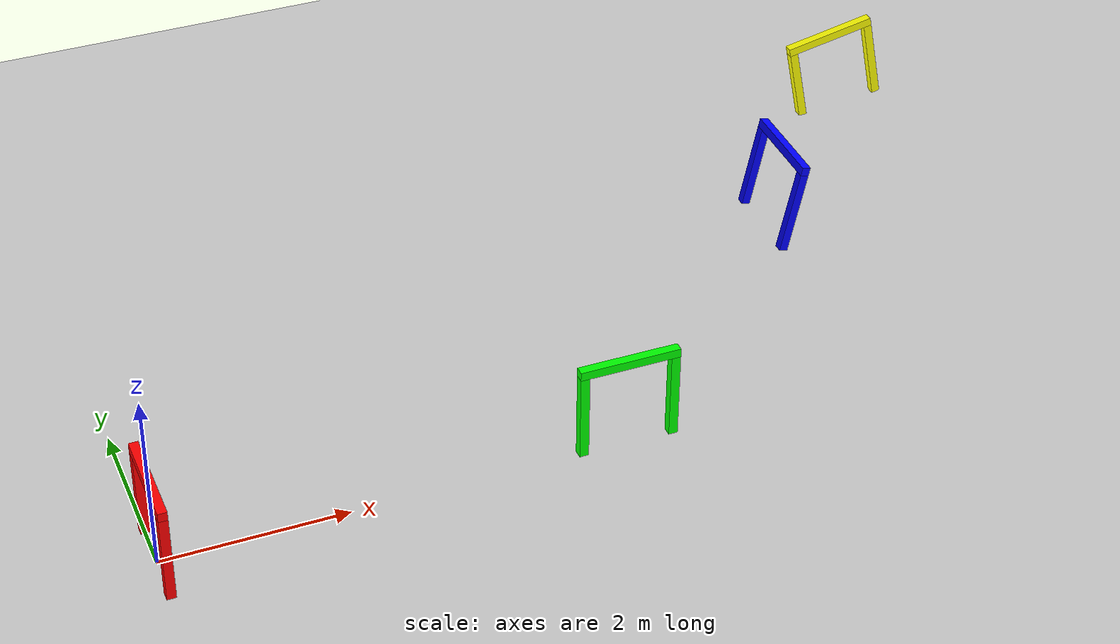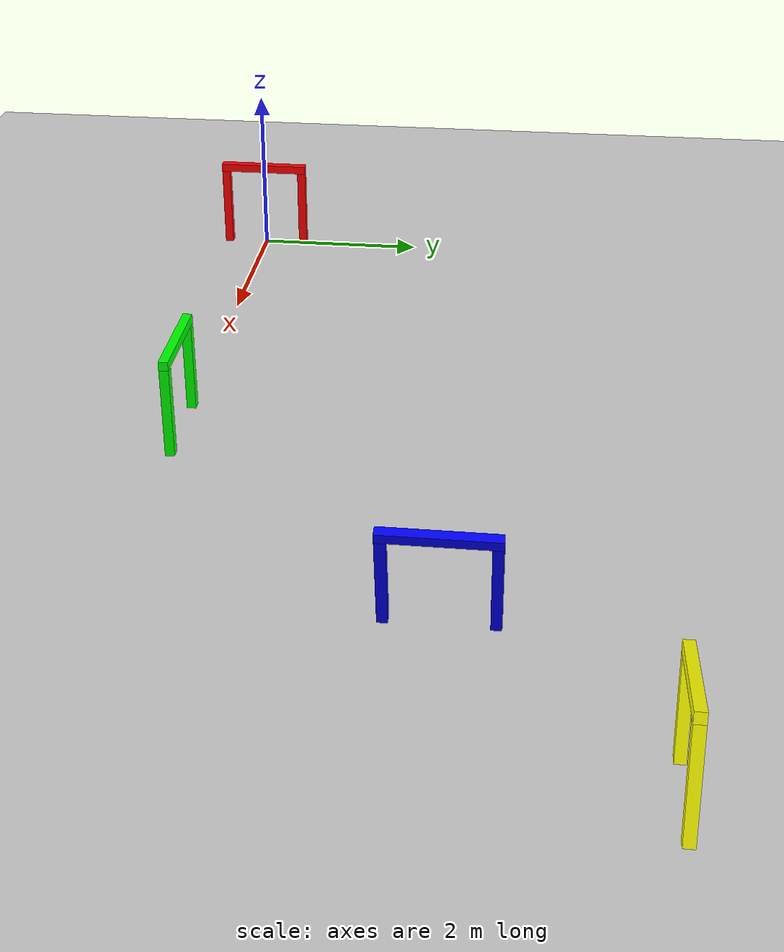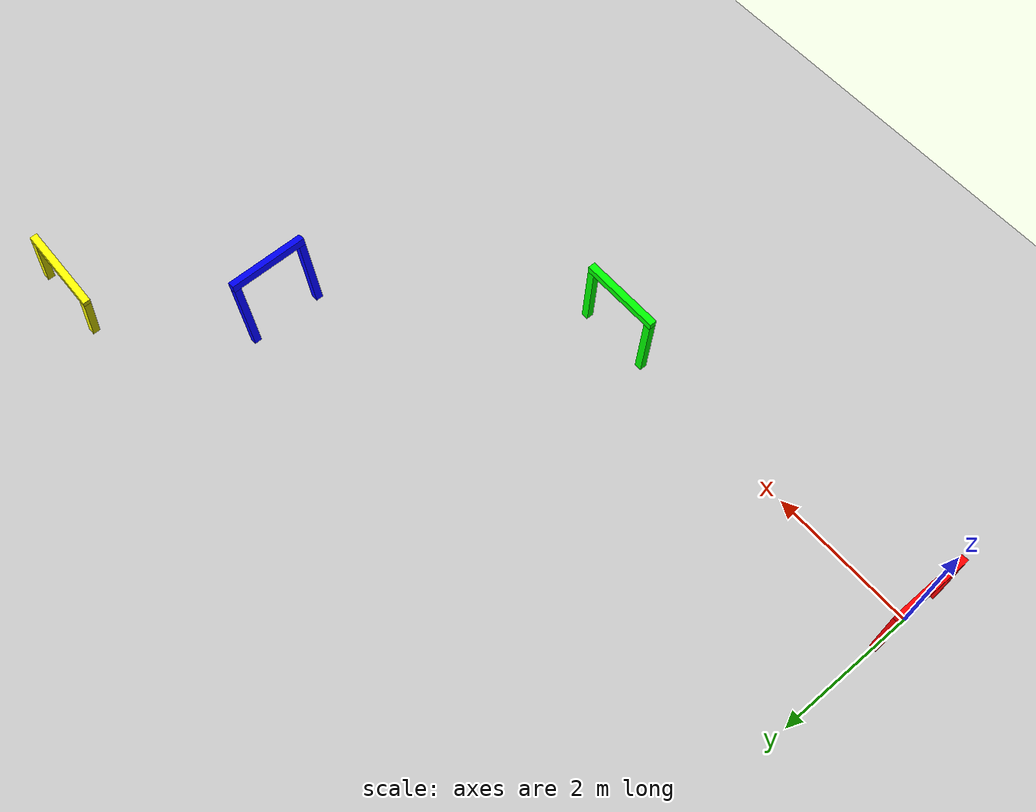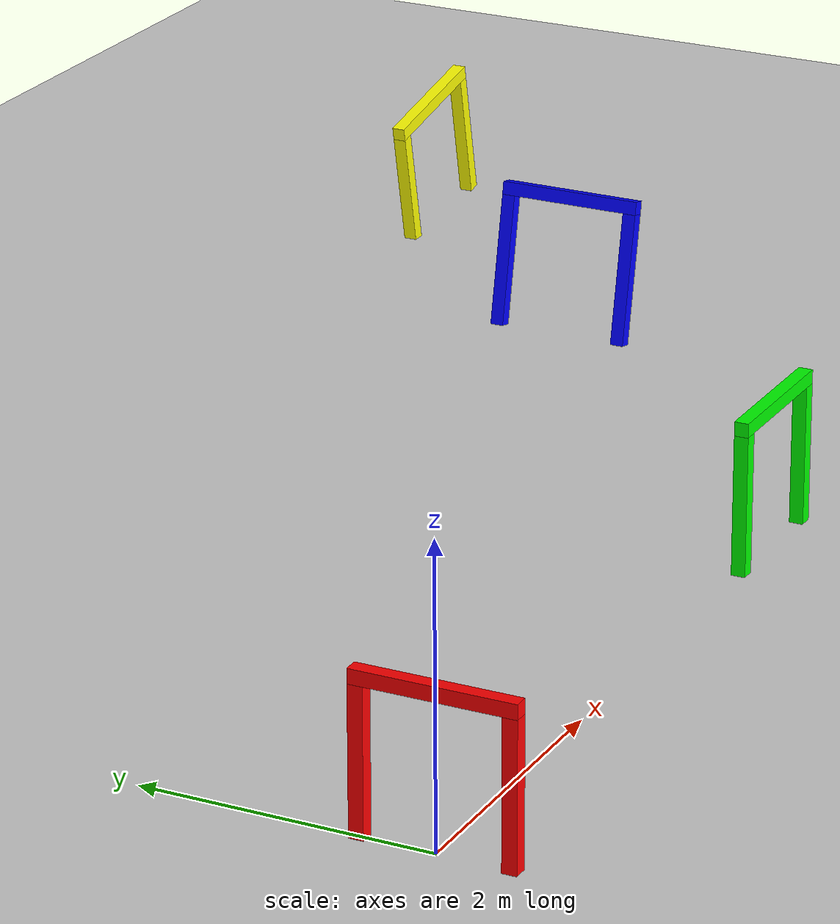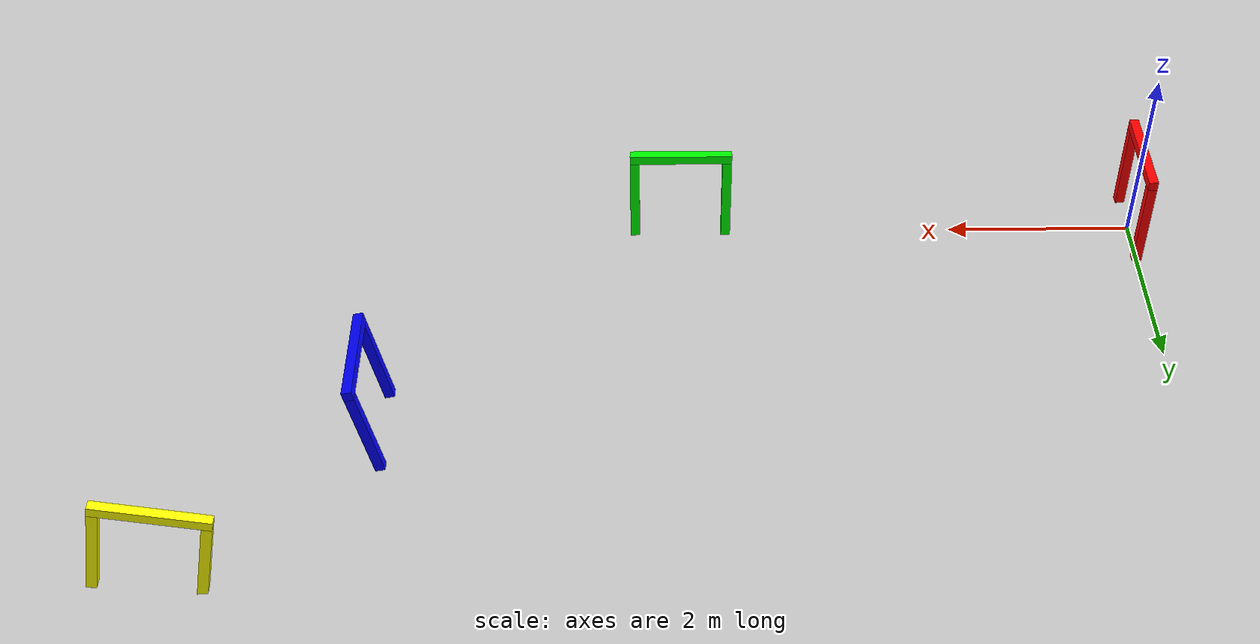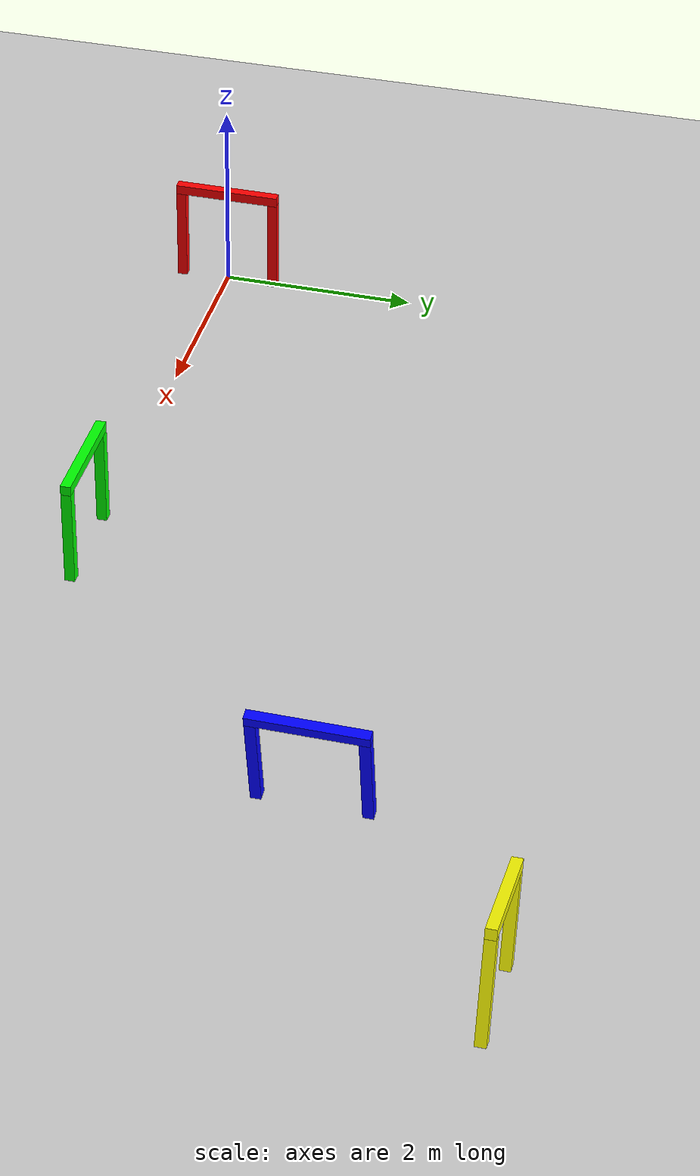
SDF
<?xml version="1.0" ?>
<sdf version="1.6">
  <world name="gate_course">

    <!-- Physics engine -->
    <physics type="ode">
      <max_step_size>0.001</max_step_size>
      <real_time_factor>1</real_time_factor>
      <real_time_update_rate>1000</real_time_update_rate>
      <gravity>0 0 -9.81</gravity>
    </physics>

    <!-- Lighting -->
    <light name="sun" type="directional">
      <cast_shadows>true</cast_shadows>
      <diffuse>0.8 0.8 0.8 1</diffuse>
      <specular>0.2 0.2 0.2 1</specular>
      <attenuation>
        <range>1000</range>
        <constant>0.9</constant>
        <linear>0.01</linear>
        <quadratic>0.001</quadratic>
      </attenuation>
      <direction>-0.5 0.5 -1</direction>
    </light>

    <!-- Ground plane -->
    <model name="ground_plane">
      <static>true</static>
      <link name="link">
        <collision name="collision">
          <geometry>
            <plane>
              <normal>0 0 1</normal>
              <size>100 100</size>
            </plane>
          </geometry>
        </collision>
        <visual name="visual">
          <geometry>
            <plane>
              <normal>0 0 1</normal>
              <size>100 100</size>
            </plane>
          </geometry>
          <material>
            <ambient>0.8 0.8 0.8 1</ambient>
            <diffuse>0.8 0.8 0.8 1</diffuse>
            <specular>0.8 0.8 0.8 1</specular>
          </material>
        </visual>
      </link>
    </model>

    <!-- Gate 0 - Starting gate (centered at origin horizontally) -->
    <model name="gate_0">
      <static>true</static>
      <link name="base_link">
        <pose>0 0 0 0 0 0</pose>
        <inertial>
          <mass>10.0</mass>
          <inertia>
            <ixx>1.0</ixx>
            <iyy>1.0</iyy>
            <izz>1.0</izz>
          </inertia>
        </inertial>

        <!-- Vertical supports (poles) -->
        <collision name="left_pole_collision">
          <pose>0 -0.5 0.5 0 0 0</pose>
          <geometry>
            <box>
              <size>0.1 0.1 1.0</size>
            </box>
          </geometry>
        </collision>
        <visual name="left_pole_visual">
          <pose>0 -0.5 0.5 0 0 0</pose>
          <geometry>
            <box>
              <size>0.1 0.1 1.0</size>
            </box>
          </geometry>
          <material>
            <ambient>1 0 0 1</ambient>
            <diffuse>1 0 0 1</diffuse>
          </material>
        </visual>

        <collision name="right_pole_collision">
          <pose>0 0.5 0.5 0 0 0</pose>
          <geometry>
            <box>
              <size>0.1 0.1 1.0</size>
            </box>
          </geometry>
        </collision>
        <visual name="right_pole_visual">
          <pose>0 0.5 0.5 0 0 0</pose>
          <geometry>
            <box>
              <size>0.1 0.1 1.0</size>
            </box>
          </geometry>
          <material>
            <ambient>1 0 0 1</ambient>
            <diffuse>1 0 0 1</diffuse>
          </material>
        </visual>

        <!-- Top bar -->
        <collision name="top_bar_collision">
          <pose>0 0 1.05 0 0 0</pose>
          <geometry>
            <box>
              <size>0.1 1.1 0.1</size>
            </box>
          </geometry>
        </collision>
        <visual name="top_bar_visual">
          <pose>0 0 1.05 0 0 0</pose>
          <geometry>
            <box>
              <size>0.1 1.1 0.1</size>
            </box>
          </geometry>
          <material>
            <ambient>1 0 0 1</ambient>
            <diffuse>1 0 0 1</diffuse>
          </material>
        </visual>
      </link>
    </model>

    <!-- Gate 1 - Rotated 90 degrees, positioned ahead -->
    <model name="gate_1">
      <static>true</static>
      <pose>5 0 0 0 0 1.5708</pose>
      <link name="base_link">
        <inertial>
          <mass>10.0</mass>
          <inertia>
            <ixx>1.0</ixx>
            <iyy>1.0</iyy>
            <izz>1.0</izz>
          </inertia>
        </inertial>

        <!-- Vertical supports -->
        <collision name="left_pole_collision">
          <pose>0 -0.5 0.5 0 0 0</pose>
          <geometry>
            <box>
              <size>0.1 0.1 1.0</size>
            </box>
          </geometry>
        </collision>
        <visual name="left_pole_visual">
          <pose>0 -0.5 0.5 0 0 0</pose>
          <geometry>
            <box>
              <size>0.1 0.1 1.0</size>
            </box>
          </geometry>
          <material>
            <ambient>0 1 0 1</ambient>
            <diffuse>0 1 0 1</diffuse>
          </material>
        </visual>

        <collision name="right_pole_collision">
          <pose>0 0.5 0.5 0 0 0</pose>
          <geometry>
            <box>
              <size>0.1 0.1 1.0</size>
            </box>
          </geometry>
        </collision>
        <visual name="right_pole_visual">
          <pose>0 0.5 0.5 0 0 0</pose>
          <geometry>
            <box>
              <size>0.1 0.1 1.0</size>
            </box>
          </geometry>
          <material>
            <ambient>0 1 0 1</ambient>
            <diffuse>0 1 0 1</diffuse>
          </material>
        </visual>

        <!-- Top bar -->
        <collision name="top_bar_collision">
          <pose>0 0 1.05 0 0 0</pose>
          <geometry>
            <box>
              <size>0.1 1.1 0.1</size>
            </box>
          </geometry>
        </collision>
        <visual name="top_bar_visual">
          <pose>0 0 1.05 0 0 0</pose>
          <geometry>
            <box>
              <size>0.1 1.1 0.1</size>
            </box>
          </geometry>
          <material>
            <ambient>0 1 0 1</ambient>
            <diffuse>0 1 0 1</diffuse>
          </material>
        </visual>
      </link>
    </model>

    <!-- Gate 2 - Tilted, positioned to the right -->
    <model name="gate_2">
      <static>true</static>
      <pose>8 3 0 0 0.2 0</pose>
      <link name="base_link">
        <inertial>
          <mass>10.0</mass>
          <inertia>
            <ixx>1.0</ixx>
            <iyy>1.0</iyy>
            <izz>1.0</izz>
          </inertia>
        </inertial>

        <!-- Vertical supports -->
        <collision name="left_pole_collision">
          <pose>0 -0.5 0.5 0 0 0</pose>
          <geometry>
            <box>
              <size>0.1 0.1 1.0</size>
            </box>
          </geometry>
        </collision>
        <visual name="left_pole_visual">
          <pose>0 -0.5 0.5 0 0 0</pose>
          <geometry>
            <box>
              <size>0.1 0.1 1.0</size>
            </box>
          </geometry>
          <material>
            <ambient>0 0 1 1</ambient>
            <diffuse>0 0 1 1</diffuse>
          </material>
        </visual>

        <collision name="right_pole_collision">
          <pose>0 0.5 0.5 0 0 0</pose>
          <geometry>
            <box>
              <size>0.1 0.1 1.0</size>
            </box>
          </geometry>
        </collision>
        <visual name="right_pole_visual">
          <pose>0 0.5 0.5 0 0 0</pose>
          <geometry>
            <box>
              <size>0.1 0.1 1.0</size>
            </box>
          </geometry>
          <material>
            <ambient>0 0 1 1</ambient>
            <diffuse>0 0 1 1</diffuse>
          </material>
        </visual>

        <!-- Top bar -->
        <collision name="top_bar_collision">
          <pose>0 0 1.05 0 0 0</pose>
          <geometry>
            <box>
              <size>0.1 1.1 0.1</size>
            </box>
          </geometry>
        </collision>
        <visual name="top_bar_visual">
          <pose>0 0 1.05 0 0 0</pose>
          <geometry>
            <box>
              <size>0.1 1.1 0.1</size>
            </box>
          </geometry>
          <material>
            <ambient>0 0 1 1</ambient>
            <diffuse>0 0 1 1</diffuse>
          </material>
        </visual>
      </link>
    </model>

    <!-- Gate 3 - Challenge gate at the end -->
    <model name="gate_3">
      <static>true</static>
      <pose>10 5 0 0.2 0 -1.5708</pose>
      <link name="base_link">
        <inertial>
          <mass>10.0</mass>
          <inertia>
            <ixx>1.0</ixx>
            <iyy>1.0</iyy>
            <izz>1.0</izz>
          </inertia>
        </inertial>

        <!-- Vertical supports -->
        <collision name="left_pole_collision">
          <pose>0 -0.5 0.5 0 0 0</pose>
          <geometry>
            <box>
              <size>0.1 0.1 1.0</size>
            </box>
          </geometry>
        </collision>
        <visual name="left_pole_visual">
          <pose>0 -0.5 0.5 0 0 0</pose>
          <geometry>
            <box>
              <size>0.1 0.1 1.0</size>
            </box>
          </geometry>
          <material>
            <ambient>1 1 0 1</ambient>
            <diffuse>1 1 0 1</diffuse>
          </material>
        </visual>

        <collision name="right_pole_collision">
          <pose>0 0.5 0.5 0 0 0</pose>
          <geometry>
            <box>
              <size>0.1 0.1 1.0</size>
            </box>
          </geometry>
        </collision>
        <visual name="right_pole_visual">
          <pose>0 0.5 0.5 0 0 0</pose>
          <geometry>
            <box>
              <size>0.1 0.1 1.0</size>
            </box>
          </geometry>
          <material>
            <ambient>1 1 0 1</ambient>
            <diffuse>1 1 0 1</diffuse>
          </material>
        </visual>

        <!-- Top bar -->
        <collision name="top_bar_collision">
          <pose>0 0 1.05 0 0 0</pose>
          <geometry>
            <box>
              <size>0.1 1.1 0.1</size>
            </box>
          </geometry>
        </collision>
        <visual name="top_bar_visual">
          <pose>0 0 1.05 0 0 0</pose>
          <geometry>
            <box>
              <size>0.1 1.1 0.1</size>
            </box>
          </geometry>
          <material>
            <ambient>1 1 0 1</ambient>
            <diffuse>1 1 0 1</diffuse>
          </material>
        </visual>
      </link>
    </model>

  </world>
</sdf>
